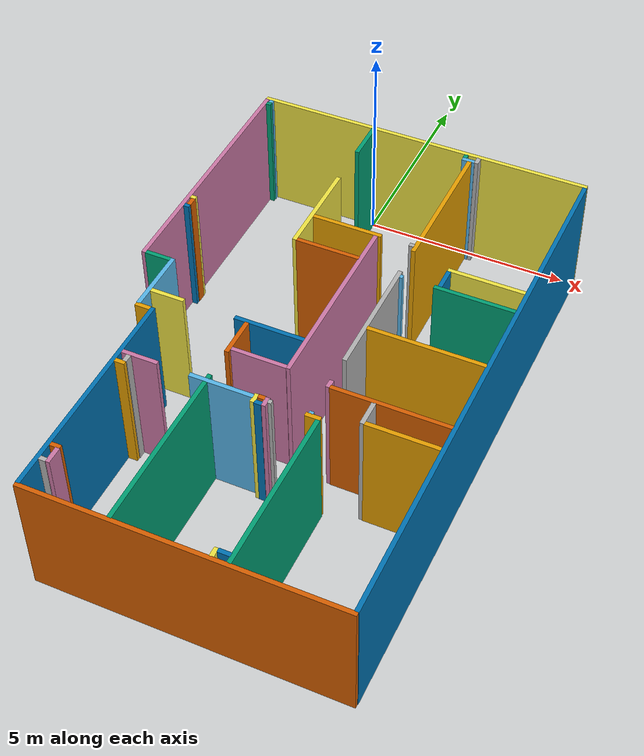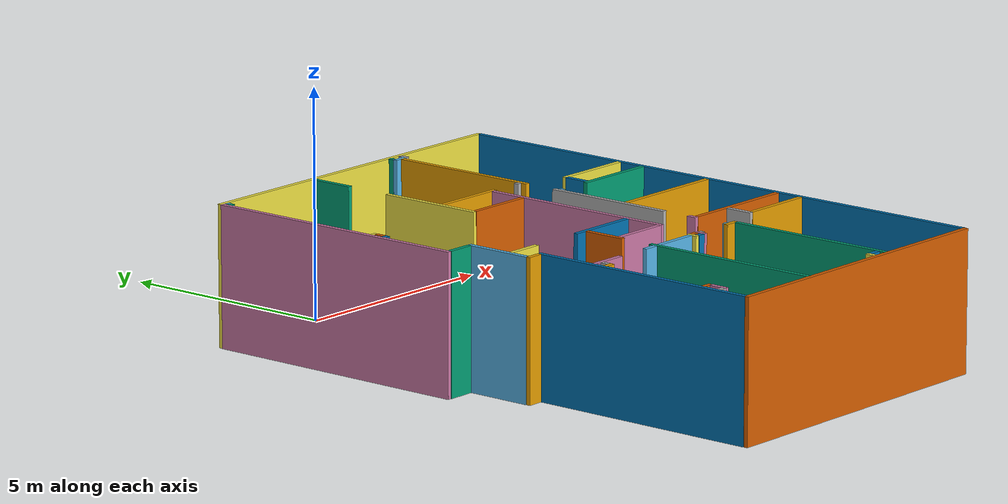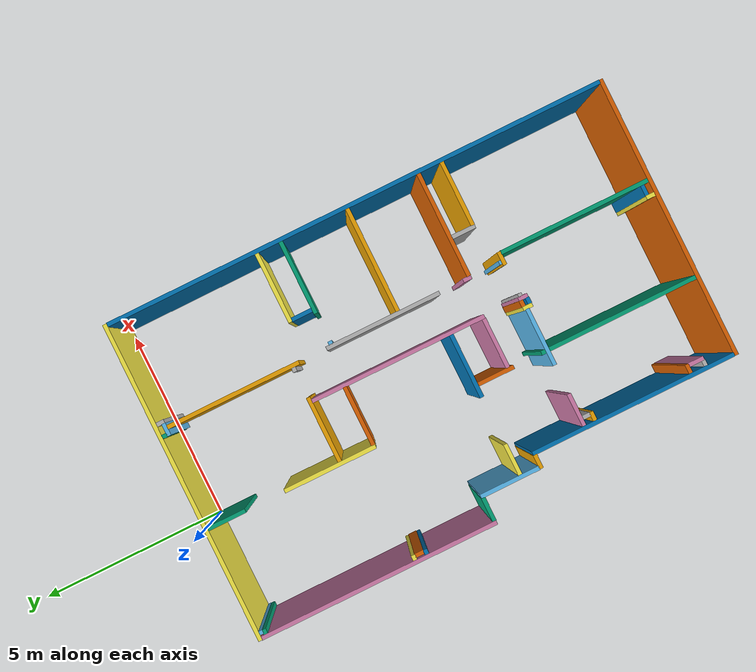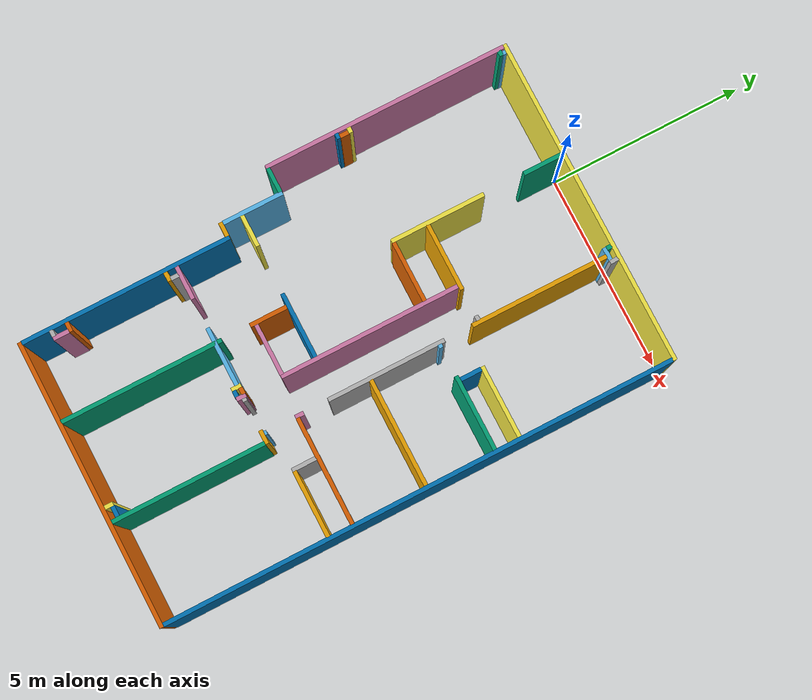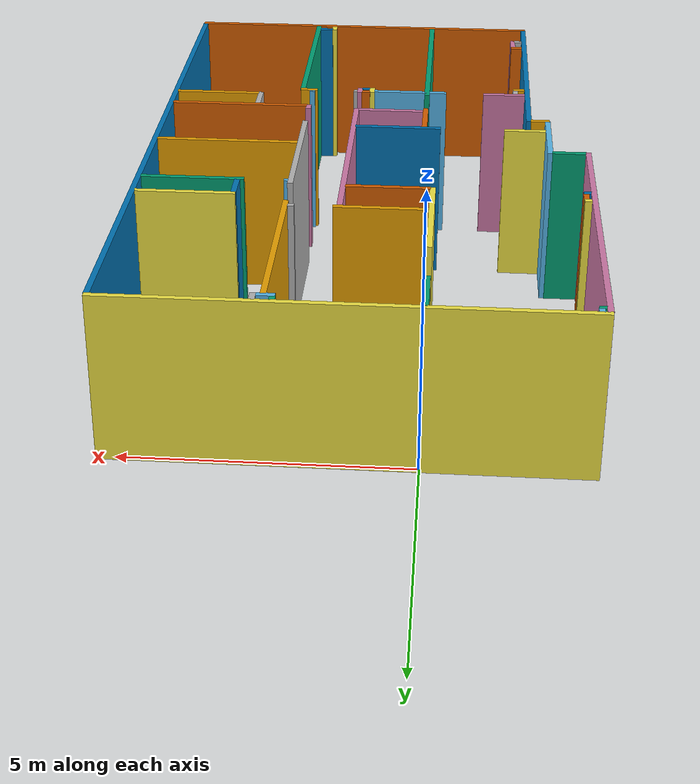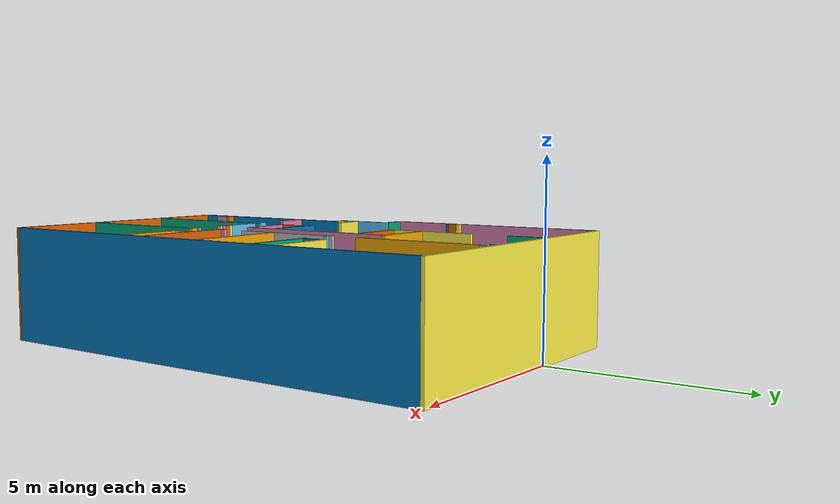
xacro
<?xml version="1.0"?>
<robot name="$(arg robot_name)" xmlns:xacro="http://www.ros.org/wiki/xacro">

  <!-- in the case of multiple floors, have each structure link to its own floor -->

  <link name="building_footprint_link" />

  <!-- floor 1 -->
  <joint name="floor1_joint" type="fixed">
    <parent link="building_footprint_link" />
    <origin xyz="0 0 0" rpy="0 0 0" />
    <child link="floor1_link" />
  </joint>
  <link name="floor1_link">
    <inertial>
      <mass value="10000" />
      <com xyz="0 0 0.0" />
      <inertia ixx="10" ixy="0"  ixz="0"
                        iyy="10" iyz="0"
                                 izz="10" />
    </inertial>
    <visual>
      <origin xyz="0 0 0" rpy="0 0 0" />
      <geometry name="floor1_visual_geom">
        <box size="0.001 0.001 0.001" />
      </geometry>
    </visual>
    <collision>
      <origin xyz="0 0 0" rpy="0 0 0" />
      <geometry name="floor1_collision_geom">
        <box size="0.001 0.001 0.001" />
      </geometry>
    </collision>
  </link>
  <gazebo reference="floor1_link">
    <material>PR2/Grey</material>
    <mu1>50.0</mu1>
    <mu2>50.0</mu2>
    <kp>1000000000.0</kp>
    <kd>1.0</kd>
  </gazebo>

  <!-- building links and joints - these connect into the floor1_link -->

  <link name="Wall_0">
    <inertial>
      <mass value="1"/>
      <origin rpy="0 0 0" xyz="0 0 1.524"/>
      <inertia ixx="0" ixy="0" ixz="0" iyy="0" iyz="0" izz="0"/>
    </inertial>
    <collision name="Wall_0_Collision">
      <origin rpy="0 0 0" xyz="0 0 1.524"/>
      <geometry>
        <box size="1.0    0.1015    3.048"/>
      </geometry>
    </collision>
    <visual name="Wall_0_Visual">
      <origin rpy="0 0 0" xyz="0 0 1.524"/>
      <geometry>
        <box size="1.0    0.1015    3.048"/>
      </geometry>
    </visual>
  </link>
  <joint type="fixed" name="Wall_0_hinge">
    <origin rpy="0 0 -1.5707963267949" xyz=" -0.0320847245965127  -0.5   0"/>
    <child link="Wall_0"/>
    <parent link="floor1_link"/>
    <axis xyz="0 0 0" rpy="0 0 0"/>
    <limit effort="10000" velocity="1000"/>
    <dynamics damping="1.0" friction="1.0"/>
  </joint>

  <link name="Wall_0a">
    <inertial>
      <mass value="1"/>
      <origin rpy="0 0 0" xyz="0 0 1.524"/>
      <inertia ixx="0" ixy="0" ixz="0" iyy="0" iyz="0" izz="0"/>
    </inertial>
    <collision name="Wall_0a_Collision">
      <origin rpy="0 0 0" xyz="0 0 1.524"/>
      <geometry>
        <box size="2.36828557853065 0.1015 3.048"/>
      </geometry>
    </collision>
    <visual name="Wall_0a_Visual">
      <origin rpy="0 0 0" xyz="0 0 1.524"/>
      <geometry>
        <box size="2.36828557853065 0.1015 3.048"/>
      </geometry>
    </visual>
  </link>
  <joint type="fixed" name="Wall_0a_hinge">
    <origin rpy="0 0 -1.5707963267949" xyz=" -0.0320847245965127 -3.20085721073468 0"/>
    <child link="Wall_0a"/>
    <parent link="floor1_link"/>
    <axis xyz="0 0 0" rpy="0 0 0"/>
    <limit effort="10000" velocity="1000"/>
    <dynamics damping="1.0" friction="1.0"/>
  </joint>

  <link name="Wall_1">
    <inertial>
      <mass value="1"/>
      <origin rpy="0 0 0" xyz="0 0 1.524"/>
      <inertia ixx="0" ixy="0" ixz="0" iyy="0" iyz="0" izz="0"/>
    </inertial>
    <collision name="Wall_1_Collision">
      <origin rpy="0 0 0" xyz="0 0 1.524"/>
      <geometry>
        <box size="5.23954304444799 0.1015 3.048"/>
      </geometry>
    </collision>
    <visual name="Wall_1_Visual">
      <origin rpy="0 0 0" xyz="0 0 1.524"/>
      <geometry>
        <box size="5.23954304444799 0.1015 3.048"/>
      </geometry>
    </visual>
  </link>
  <joint type="fixed" name="Wall_1_hinge">
    <origin rpy="0 0 1.5707963267949" xyz=" -1.80696721821406 -10.1969428992453 0"/>
    <child link="Wall_1"/>
    <parent link="floor1_link"/>
    <axis xyz="0 0 0" rpy="0 0 0"/>
    <limit effort="10000" velocity="1000"/>
    <dynamics damping="1.0" friction="1.0"/>
  </joint>
  <link name="Wall_2">
    <inertial>
      <mass value="1"/>
      <origin rpy="0 0 0" xyz="0 0 1.524"/>
      <inertia ixx="0" ixy="0" ixz="0" iyy="0" iyz="0" izz="0"/>
    </inertial>
    <collision name="Wall_2_Collision">
      <origin rpy="0 0 0" xyz="0 0 1.524"/>
      <geometry>
        <box size="1.51587077327675 0.1015 3.048"/>
      </geometry>
    </collision>
    <visual name="Wall_2_Visual">
      <origin rpy="0 0 0" xyz="0 0 1.524"/>
      <geometry>
        <box size="1.51587077327675 0.1015 3.048"/>
      </geometry>
    </visual>
  </link>
  <joint type="fixed" name="Wall_2_hinge">
    <origin rpy="0 0 0" xyz=" 0.765850662041855 -4.345 0"/>
    <child link="Wall_2"/>
    <parent link="floor1_link"/>
    <axis xyz="0 0 0" rpy="0 0 0"/>
    <limit effort="10000" velocity="1000"/>
    <dynamics damping="1.0" friction="1.0"/>
  </joint>
  <link name="Wall_3">
    <inertial>
      <mass value="1"/>
      <origin rpy="0 0 0" xyz="0 0 1.524"/>
      <inertia ixx="0" ixy="0" ixz="0" iyy="0" iyz="0" izz="0"/>
    </inertial>
    <collision name="Wall_3_Collision">
      <origin rpy="0 0 0" xyz="0 0 1.524"/>
      <geometry>
        <box size="4.48 0.1015 3.048"/>
      </geometry>
    </collision>
    <visual name="Wall_3_Visual">
      <origin rpy="0 0 0" xyz="0 0 1.524"/>
      <geometry>
        <box size="4.48 0.1015 3.048"/>
      </geometry>
    </visual>
  </link>
  <joint type="fixed" name="Wall_3_hinge">
    <origin rpy="0 0 -1.5707963267949" xyz=" 1.56378604868023 -5.75418078207523 0"/>
    <child link="Wall_3"/>
    <parent link="floor1_link"/>
    <axis xyz="0 0 0" rpy="0 0 0"/>
    <limit effort="10000" velocity="1000"/>
    <dynamics damping="1.0" friction="1.0"/>
  </joint>
  <link name="Wall_4">
    <inertial>
      <mass value="1"/>
      <origin rpy="0 0 0" xyz="0 0 1.524"/>
      <inertia ixx="0" ixy="0" ixz="0" iyy="0" iyz="0" izz="0"/>
    </inertial>
    <collision name="Wall_4_Collision">
      <origin rpy="0 0 0" xyz="0 0 1.524"/>
      <geometry>
        <box size="0.12 0.1015 3.048"/>
      </geometry>
    </collision>
    <visual name="Wall_4_Visual">
      <origin rpy="0 0 0" xyz="0 0 1.524"/>
      <geometry>
        <box size="0.12 0.1015 3.048"/>
      </geometry>
    </visual>
  </link>
  <joint type="fixed" name="Wall_4_hinge">
    <origin rpy="0 0 0" xyz=" 2.41106977281029 -3.47418078207523 0"/>
    <child link="Wall_4"/>
    <parent link="floor1_link"/>
    <axis xyz="0 0 0" rpy="0 0 0"/>
    <limit effort="10000" velocity="1000"/>
    <dynamics damping="1.0" friction="1.0"/>
  </joint>
  <link name="Wall_5">
    <inertial>
      <mass value="1"/>
      <origin rpy="0 0 0" xyz="0 0 1.524"/>
      <inertia ixx="0" ixy="0" ixz="0" iyy="0" iyz="0" izz="0"/>
    </inertial>
    <collision name="Wall_5_Collision">
      <origin rpy="0 0 0" xyz="0 0 1.524"/>
      <geometry>
        <box size="3.425 0.1015 3.048"/>
      </geometry>
    </collision>
    <visual name="Wall_5_Visual">
      <origin rpy="0 0 0" xyz="0 0 1.524"/>
      <geometry>
        <box size="3.425 0.1015 3.048"/>
      </geometry>
    </visual>
  </link>
  <joint type="fixed" name="Wall_5_hinge">
    <origin rpy="0 0 -1.5707963267949" xyz=" 2.51106977281029 -1.93921442146936 0"/>
    <child link="Wall_5"/>
    <parent link="floor1_link"/>
    <axis xyz="0 0 0" rpy="0 0 0"/>
    <limit effort="10000" velocity="1000"/>
    <dynamics damping="1.0" friction="1.0"/>
  </joint>
  <link name="Wall_6">
    <inertial>
      <mass value="1"/>
      <origin rpy="0 0 0" xyz="0 0 1.524"/>
      <inertia ixx="0" ixy="0" ixz="0" iyy="0" iyz="0" izz="0"/>
    </inertial>
    <collision name="Wall_6_Collision">
      <origin rpy="0 0 0" xyz="0 0 1.524"/>
      <geometry>
        <box size="0.314999999999999 0.1015 3.048"/>
      </geometry>
    </collision>
    <visual name="Wall_6_Visual">
      <origin rpy="0 0 0" xyz="0 0 1.524"/>
      <geometry>
        <box size="0.314999999999999 0.1015 3.048"/>
      </geometry>
    </visual>
  </link>
  <joint type="fixed" name="Wall_6_hinge">
    <origin rpy="0 0 3.14159265358979" xyz=" 2.47356977281029 -0.186714421469355 0"/>
    <child link="Wall_6"/>
    <parent link="floor1_link"/>
    <axis xyz="0 0 0" rpy="0 0 0"/>
    <limit effort="10000" velocity="1000"/>
    <dynamics damping="1.0" friction="1.0"/>
  </joint>
  <link name="Wall_7">
    <inertial>
      <mass value="1"/>
      <origin rpy="0 0 0" xyz="0 0 1.524"/>
      <inertia ixx="0" ixy="0" ixz="0" iyy="0" iyz="0" izz="0"/>
    </inertial>
    <collision name="Wall_7_Collision">
      <origin rpy="0 0 0" xyz="0 0 1.524"/>
      <geometry>
        <box size="0.13 0.1015 3.048"/>
      </geometry>
    </collision>
    <visual name="Wall_7_Visual">
      <origin rpy="0 0 0" xyz="0 0 1.524"/>
      <geometry>
        <box size="0.13 0.1015 3.048"/>
      </geometry>
    </visual>
  </link>
  <joint type="fixed" name="Wall_7_hinge">
    <origin rpy="0 0 1.5707963267949" xyz=" 2.35606977281029 -0.081714421469355 0"/>
    <child link="Wall_7"/>
    <parent link="floor1_link"/>
    <axis xyz="0 0 0" rpy="0 0 0"/>
    <limit effort="10000" velocity="1000"/>
    <dynamics damping="1.0" friction="1.0"/>
  </joint>
  <link name="Wall_8">
    <inertial>
      <mass value="1"/>
      <origin rpy="0 0 0" xyz="0 0 1.524"/>
      <inertia ixx="0" ixy="0" ixz="0" iyy="0" iyz="0" izz="0"/>
    </inertial>
    <collision name="Wall_8_Collision">
      <origin rpy="0 0 0" xyz="0 0 1.524"/>
      <geometry>
        <box size="8.215 0.1015 3.048"/>
      </geometry>
    </collision>
    <visual name="Wall_8_Visual">
      <origin rpy="0 0 0" xyz="0 0 1.524"/>
      <geometry>
        <box size="8.215 0.1015 3.048"/>
      </geometry>
    </visual>
  </link>
  <joint type="fixed" name="Wall_8_hinge">
    <origin rpy="0 0 0" xyz=" 1.20041527540349 0.0232855785306519 0"/>
    <child link="Wall_8"/>
    <parent link="floor1_link"/>
    <axis xyz="0 0 0" rpy="0 0 0"/>
    <limit effort="10000" velocity="1000"/>
    <dynamics damping="1.0" friction="1.0"/>
  </joint>
  <link name="Wall_9">
    <inertial>
      <mass value="1"/>
      <origin rpy="0 0 0" xyz="0 0 1.524"/>
      <inertia ixx="0" ixy="0" ixz="0" iyy="0" iyz="0" izz="0"/>
    </inertial>
    <collision name="Wall_9_Collision">
      <origin rpy="0 0 0" xyz="0 0 1.524"/>
      <geometry>
        <box size="12.8 0.1015 3.048"/>
      </geometry>
    </collision>
    <visual name="Wall_9_Visual">
      <origin rpy="0 0 0" xyz="0 0 1.524"/>
      <geometry>
        <box size="12.8 0.1015 3.048"/>
      </geometry>
    </visual>
  </link>
  <joint type="fixed" name="Wall_9_hinge">
    <origin rpy="0 0 -1.5707963267949" xyz=" 5.26791527540349 -6.41671442146936 0"/>
    <child link="Wall_9"/>
    <parent link="floor1_link"/>
    <axis xyz="0 0 0" rpy="0 0 0"/>
    <limit effort="10000" velocity="1000"/>
    <dynamics damping="1.0" friction="1.0"/>
  </joint>
  <link name="Wall_10">
    <inertial>
      <mass value="1"/>
      <origin rpy="0 0 0" xyz="0 0 1.524"/>
      <inertia ixx="0" ixy="0" ixz="0" iyy="0" iyz="0" izz="0"/>
    </inertial>
    <collision name="Wall_10_Collision">
      <origin rpy="0 0 0" xyz="0 0 1.524"/>
      <geometry>
        <box size="7.155 0.1015 3.048"/>
      </geometry>
    </collision>
    <visual name="Wall_10_Visual">
      <origin rpy="0 0 0" xyz="0 0 1.524"/>
      <geometry>
        <box size="7.155 0.1015 3.048"/>
      </geometry>
    </visual>
  </link>
  <joint type="fixed" name="Wall_10_hinge">
    <origin rpy="0 0 3.14159265358979" xyz=" 1.73041527540347 -12.8567144214694 0"/>
    <child link="Wall_10"/>
    <parent link="floor1_link"/>
    <axis xyz="0 0 0" rpy="0 0 0"/>
    <limit effort="10000" velocity="1000"/>
    <dynamics damping="1.0" friction="1.0"/>
  </joint>
  <link name="Wall_11">
    <inertial>
      <mass value="1"/>
      <origin rpy="0 0 0" xyz="0 0 1.524"/>
      <inertia ixx="0" ixy="0" ixz="0" iyy="0" iyz="0" izz="0"/>
    </inertial>
    <collision name="Wall_11_Collision">
      <origin rpy="0 0 0" xyz="0 0 1.524"/>
      <geometry>
        <box size="6.115456955552 0.1015 3.048"/>
      </geometry>
    </collision>
    <visual name="Wall_11_Visual">
      <origin rpy="0 0 0" xyz="0 0 1.524"/>
      <geometry>
        <box size="6.115456955552 0.1015 3.048"/>
      </geometry>
    </visual>
  </link>
  <joint type="fixed" name="Wall_11_hinge">
    <origin rpy="0 0 -1.5707963267949" xyz=" -2.86708472459651 -3.07444289924535 0"/>
    <child link="Wall_11"/>
    <parent link="floor1_link"/>
    <axis xyz="0 0 0" rpy="0 0 0"/>
    <limit effort="10000" velocity="1000"/>
    <dynamics damping="1.0" friction="1.0"/>
  </joint>
  <link name="Wall_12">
    <inertial>
      <mass value="1"/>
      <origin rpy="0 0 0" xyz="0 0 1.524"/>
      <inertia ixx="0" ixy="0" ixz="0" iyy="0" iyz="0" izz="0"/>
    </inertial>
    <collision name="Wall_12_Collision">
      <origin rpy="0 0 0" xyz="0 0 1.524"/>
      <geometry>
        <box size="0.21 0.1015 3.048"/>
      </geometry>
    </collision>
    <visual name="Wall_12_Visual">
      <origin rpy="0 0 0" xyz="0 0 1.524"/>
      <geometry>
        <box size="0.21 0.1015 3.048"/>
      </geometry>
    </visual>
  </link>
  <joint type="fixed" name="Wall_12_hinge">
    <origin rpy="0 0 -1.5707963267949" xyz=" 2.67106977281029 -0.121714421469355 0"/>
    <child link="Wall_12"/>
    <parent link="floor1_link"/>
    <axis xyz="0 0 0" rpy="0 0 0"/>
    <limit effort="10000" velocity="1000"/>
    <dynamics damping="1.0" friction="1.0"/>
  </joint>
  <link name="Wall_13">
    <inertial>
      <mass value="1"/>
      <origin rpy="0 0 0" xyz="0 0 1.524"/>
      <inertia ixx="0" ixy="0" ixz="0" iyy="0" iyz="0" izz="0"/>
    </inertial>
    <collision name="Wall_13_Collision">
      <origin rpy="0 0 0" xyz="0 0 1.524"/>
      <geometry>
        <box size="0.36 0.1015 3.048"/>
      </geometry>
    </collision>
    <visual name="Wall_13_Visual">
      <origin rpy="0 0 0" xyz="0 0 1.524"/>
      <geometry>
        <box size="0.36 0.1015 3.048"/>
      </geometry>
    </visual>
  </link>
  <joint type="fixed" name="Wall_13_hinge">
    <origin rpy="0 0 3.14159265358979" xyz=" -2.02696721821405 -7.61717137702135 0"/>
    <child link="Wall_13"/>
    <parent link="floor1_link"/>
    <axis xyz="0 0 0" rpy="0 0 0"/>
    <limit effort="10000" velocity="1000"/>
    <dynamics damping="1.0" friction="1.0"/>
  </joint>
  <link name="Wall_14">
    <inertial>
      <mass value="1"/>
      <origin rpy="0 0 0" xyz="0 0 1.524"/>
      <inertia ixx="0" ixy="0" ixz="0" iyy="0" iyz="0" izz="0"/>
    </inertial>
    <collision name="Wall_14_Collision">
      <origin rpy="0 0 0" xyz="0 0 1.524"/>
      <geometry>
        <box size="1.525 0.1015 3.048"/>
      </geometry>
    </collision>
    <visual name="Wall_14_Visual">
      <origin rpy="0 0 0" xyz="0 0 1.524"/>
      <geometry>
        <box size="1.525 0.1015 3.048"/>
      </geometry>
    </visual>
  </link>
  <joint type="fixed" name="Wall_14_hinge">
    <origin rpy="0 0 1.5707963267949" xyz=" -2.16696721821405 -6.81467137702135 0"/>
    <child link="Wall_14"/>
    <parent link="floor1_link"/>
    <axis xyz="0 0 0" rpy="0 0 0"/>
    <limit effort="10000" velocity="1000"/>
    <dynamics damping="1.0" friction="1.0"/>
  </joint>
  <link name="Wall_15">
    <inertial>
      <mass value="1"/>
      <origin rpy="0 0 0" xyz="0 0 1.524"/>
      <inertia ixx="0" ixy="0" ixz="0" iyy="0" iyz="0" izz="0"/>
    </inertial>
    <collision name="Wall_15_Collision">
      <origin rpy="0 0 0" xyz="0 0 1.524"/>
      <geometry>
        <box size="0.620117506382473 0.1015 3.048"/>
      </geometry>
    </collision>
    <visual name="Wall_15_Visual">
      <origin rpy="0 0 0" xyz="0 0 1.524"/>
      <geometry>
        <box size="0.620117506382473 0.1015 3.048"/>
      </geometry>
    </visual>
  </link>
  <joint type="fixed" name="Wall_15_hinge">
    <origin rpy="0 0 3.14159265358979" xyz=" -2.51702597140529 -6.09217137702135 0"/>
    <child link="Wall_15"/>
    <parent link="floor1_link"/>
    <axis xyz="0 0 0" rpy="0 0 0"/>
    <limit effort="10000" velocity="1000"/>
    <dynamics damping="1.0" friction="1.0"/>
  </joint>
  <link name="Wall_16">
    <inertial>
      <mass value="1"/>
      <origin rpy="0 0 0" xyz="0 0 1.524"/>
      <inertia ixx="0" ixy="0" ixz="0" iyy="0" iyz="0" izz="0"/>
    </inertial>
    <collision name="Wall_16_Collision">
      <origin rpy="0 0 0" xyz="0 0 1.524"/>
      <geometry>
        <box size="0.8 0.1015 3.048"/>
      </geometry>
    </collision>
    <visual name="Wall_16_Visual">
      <origin rpy="0 0 0" xyz="0 0 1.524"/>
      <geometry>
        <box size="0.8 0.1015 3.048"/>
      </geometry>
    </visual>
  </link>
  <joint type="fixed" name="Wall_16_hinge">
    <origin rpy="0 0 0" xyz=" -1.72696721821405 -7.10717137702135 0"/>
    <child link="Wall_16"/>
    <parent link="floor1_link"/>
    <axis xyz="0 0 0" rpy="0 0 0"/>
    <limit effort="10000" velocity="1000"/>
    <dynamics damping="1.0" friction="1.0"/>
  </joint>
  <link name="Wall_17">
    <inertial>
      <mass value="1"/>
      <origin rpy="0 0 0" xyz="0 0 1.524"/>
      <inertia ixx="0" ixy="0" ixz="0" iyy="0" iyz="0" izz="0"/>
    </inertial>
    <collision name="Wall_17_Collision">
      <origin rpy="0 0 0" xyz="0 0 1.524"/>
      <geometry>
        <box size="1.63139505276616 0.1015 3.048"/>
      </geometry>
    </collision>
    <visual name="Wall_17_Visual">
      <origin rpy="0 0 0" xyz="0 0 1.524"/>
      <geometry>
        <box size="1.63139505276616 0.1015 3.048"/>
      </geometry>
    </visual>
  </link>
  <joint type="fixed" name="Wall_17_hinge">
    <origin rpy="0 0 0" xyz=" 0.708088522297137 -7.1081449175682 0"/>
    <child link="Wall_17"/>
    <parent link="floor1_link"/>
    <axis xyz="0 0 0" rpy="0 0 0"/>
    <limit effort="10000" velocity="1000"/>
    <dynamics damping="1.0" friction="1.0"/>
  </joint>
  <link name="Wall_18">
    <inertial>
      <mass value="1"/>
      <origin rpy="0 0 0" xyz="0 0 1.524"/>
      <inertia ixx="0" ixy="0" ixz="0" iyy="0" iyz="0" izz="0"/>
    </inertial>
    <collision name="Wall_18_Collision">
      <origin rpy="0 0 0" xyz="0 0 1.524"/>
      <geometry>
        <box size="0.94 0.1015 3.048"/>
      </geometry>
    </collision>
    <visual name="Wall_18_Visual">
      <origin rpy="0 0 0" xyz="0 0 1.524"/>
      <geometry>
        <box size="0.94 0.1015 3.048"/>
      </geometry>
    </visual>
  </link>
  <joint type="fixed" name="Wall_18_hinge">
    <origin rpy="0 0 -1.5707963267949" xyz=" 0.203786048680223 -7.61814491756821 0"/>
    <child link="Wall_18"/>
    <parent link="floor1_link"/>
    <axis xyz="0 0 0" rpy="0 0 0"/>
    <limit effort="10000" velocity="1000"/>
    <dynamics damping="1.0" friction="1.0"/>
  </joint>
  <link name="Wall_19">
    <inertial>
      <mass value="1"/>
      <origin rpy="0 0 0" xyz="0 0 1.524"/>
      <inertia ixx="0" ixy="0" ixz="0" iyy="0" iyz="0" izz="0"/>
    </inertial>
    <collision name="Wall_19_Collision">
      <origin rpy="0 0 0" xyz="0 0 1.524"/>
      <geometry>
        <box size="1.28 0.1015 3.048"/>
      </geometry>
    </collision>
    <visual name="Wall_19_Visual">
      <origin rpy="0 0 0" xyz="0 0 1.524"/>
      <geometry>
        <box size="1.28 0.1015 3.048"/>
      </geometry>
    </visual>
  </link>
  <joint type="fixed" name="Wall_19_hinge">
    <origin rpy="0 0 3.14159265358979" xyz=" 0.88378604868022 -7.95418078207523 0"/>
    <child link="Wall_19"/>
    <parent link="floor1_link"/>
    <axis xyz="0 0 0" rpy="0 0 0"/>
    <limit effort="10000" velocity="1000"/>
    <dynamics damping="1.0" friction="1.0"/>
  </joint>
  <link name="Wall_20">
    <inertial>
      <mass value="1"/>
      <origin rpy="0 0 0" xyz="0 0 1.524"/>
      <inertia ixx="0" ixy="0" ixz="0" iyy="0" iyz="0" izz="0"/>
    </inertial>
    <collision name="Wall_20_Collision">
      <origin rpy="0 0 0" xyz="0 0 1.524"/>
      <geometry>
        <box size="2.94 0.1015 3.048"/>
      </geometry>
    </collision>
    <visual name="Wall_20_Visual">
      <origin rpy="0 0 0" xyz="0 0 1.524"/>
      <geometry>
        <box size="2.94 0.1015 3.048"/>
      </geometry>
    </visual>
  </link>
  <joint type="fixed" name="Wall_20_hinge">
    <origin rpy="0 0 -1.5707963267949" xyz=" 2.51257647248415 -5.82868667687965 0"/>
    <child link="Wall_20"/>
    <parent link="floor1_link"/>
    <axis xyz="0 0 0" rpy="0 0 0"/>
    <limit effort="10000" velocity="1000"/>
    <dynamics damping="1.0" friction="1.0"/>
  </joint>
  <link name="Wall_21">
    <inertial>
      <mass value="1"/>
      <origin rpy="0 0 0" xyz="0 0 1.524"/>
      <inertia ixx="0" ixy="0" ixz="0" iyy="0" iyz="0" izz="0"/>
    </inertial>
    <collision name="Wall_21_Collision">
      <origin rpy="0 0 0" xyz="0 0 1.524"/>
      <geometry>
        <box size="2.67533880291933 0.1015 3.048"/>
      </geometry>
    </collision>
    <visual name="Wall_21_Visual">
      <origin rpy="0 0 0" xyz="0 0 1.524"/>
      <geometry>
        <box size="2.67533880291933 0.1015 3.048"/>
      </geometry>
    </visual>
  </link>
  <joint type="fixed" name="Wall_21_hinge">
    <origin rpy="0 0 3.14159265358979" xyz=" 3.89024587394381 -6.23868667687965 0"/>
    <child link="Wall_21"/>
    <parent link="floor1_link"/>
    <axis xyz="0 0 0" rpy="0 0 0"/>
    <limit effort="10000" velocity="1000"/>
    <dynamics damping="1.0" friction="1.0"/>
  </joint>
  <link name="Wall_22">
    <inertial>
      <mass value="1"/>
      <origin rpy="0 0 0" xyz="0 0 1.524"/>
      <inertia ixx="0" ixy="0" ixz="0" iyy="0" iyz="0" izz="0"/>
    </inertial>
    <collision name="Wall_22_Collision">
      <origin rpy="0 0 0" xyz="0 0 1.524"/>
      <geometry>
        <box size="0.0850000000000007 0.1015 3.048"/>
      </geometry>
    </collision>
    <visual name="Wall_22_Visual">
      <origin rpy="0 0 0" xyz="0 0 1.524"/>
      <geometry>
        <box size="0.0850000000000007 0.1015 3.048"/>
      </geometry>
    </visual>
  </link>
  <joint type="fixed" name="Wall_22_hinge">
    <origin rpy="0 0 0" xyz=" 2.59507647248415 -4.50368667687965 0"/>
    <child link="Wall_22"/>
    <parent link="floor1_link"/>
    <axis xyz="0 0 0" rpy="0 0 0"/>
    <limit effort="10000" velocity="1000"/>
    <dynamics damping="1.0" friction="1.0"/>
  </joint>
  <link name="Wall_23">
    <inertial>
      <mass value="1"/>
      <origin rpy="0 0 0" xyz="0 0 1.524"/>
      <inertia ixx="0" ixy="0" ixz="0" iyy="0" iyz="0" izz="0"/>
    </inertial>
    <collision name="Wall_23_Collision">
      <origin rpy="0 0 0" xyz="0 0 1.524"/>
      <geometry>
        <box size="1.87367439625208 0.1015 3.048"/>
      </geometry>
    </collision>
    <visual name="Wall_23_Visual">
      <origin rpy="0 0 0" xyz="0 0 1.524"/>
      <geometry>
        <box size="1.87367439625208 0.1015 3.048"/>
      </geometry>
    </visual>
  </link>
  <joint type="fixed" name="Wall_23_hinge">
    <origin rpy="0 0 0" xyz=" 4.29107807727743 -4.50455145365601 0"/>
    <child link="Wall_23"/>
    <parent link="floor1_link"/>
    <axis xyz="0 0 0" rpy="0 0 0"/>
    <limit effort="10000" velocity="1000"/>
    <dynamics damping="1.0" friction="1.0"/>
  </joint>
  <link name="Wall_24">
    <inertial>
      <mass value="1"/>
      <origin rpy="0 0 0" xyz="0 0 1.524"/>
      <inertia ixx="0" ixy="0" ixz="0" iyy="0" iyz="0" izz="0"/>
    </inertial>
    <collision name="Wall_24_Collision">
      <origin rpy="0 0 0" xyz="0 0 1.524"/>
      <geometry>
        <box size="1.79533880291933 0.1015 3.048"/>
      </geometry>
    </collision>
    <visual name="Wall_24_Visual">
      <origin rpy="0 0 0" xyz="0 0 1.524"/>
      <geometry>
        <box size="1.79533880291933 0.1015 3.048"/>
      </geometry>
    </visual>
  </link>
  <joint type="fixed" name="Wall_24_hinge">
    <origin rpy="0 0 3.14159265358979" xyz=" 4.33024587394381 -3.88500000000001 0"/>
    <child link="Wall_24"/>
    <parent link="floor1_link"/>
    <axis xyz="0 0 0" rpy="0 0 0"/>
    <limit effort="10000" velocity="1000"/>
    <dynamics damping="1.0" friction="1.0"/>
  </joint>
  <link name="Wall_25">
    <inertial>
      <mass value="1"/>
      <origin rpy="0 0 0" xyz="0 0 1.524"/>
      <inertia ixx="0" ixy="0" ixz="0" iyy="0" iyz="0" izz="0"/>
    </inertial>
    <collision name="Wall_25_Collision">
      <origin rpy="0 0 0" xyz="0 0 1.524"/>
      <geometry>
        <box size="0.539551453656003 0.1015 3.048"/>
      </geometry>
    </collision>
    <visual name="Wall_25_Visual">
      <origin rpy="0 0 0" xyz="0 0 1.524"/>
      <geometry>
        <box size="0.539551453656003 0.1015 3.048"/>
      </geometry>
    </visual>
  </link>
  <joint type="fixed" name="Wall_25_hinge">
    <origin rpy="0 0 -1.5707963267949" xyz=" 3.47257647248415 -4.19477572682801 0"/>
    <child link="Wall_25"/>
    <parent link="floor1_link"/>
    <axis xyz="0 0 0" rpy="0 0 0"/>
    <limit effort="10000" velocity="1000"/>
    <dynamics damping="1.0" friction="1.0"/>
  </joint>
  <link name="Wall_26">
    <inertial>
      <mass value="1"/>
      <origin rpy="0 0 0" xyz="0 0 1.524"/>
      <inertia ixx="0" ixy="0" ixz="0" iyy="0" iyz="0" izz="0"/>
    </inertial>
    <collision name="Wall_26_Collision">
      <origin rpy="0 0 0" xyz="0 0 1.524"/>
      <geometry>
        <box size="2.66978450374121 0.1015 3.048"/>
      </geometry>
    </collision>
    <visual name="Wall_26_Visual">
      <origin rpy="0 0 0" xyz="0 0 1.524"/>
      <geometry>
        <box size="2.66978450374121 0.1015 3.048"/>
      </geometry>
    </visual>
  </link>
  <joint type="fixed" name="Wall_26_hinge">
    <origin rpy="0 0 0" xyz=" 3.89302302353287 -8.08548070884217 0"/>
    <child link="Wall_26"/>
    <parent link="floor1_link"/>
    <axis xyz="0 0 0" rpy="0 0 0"/>
    <limit effort="10000" velocity="1000"/>
    <dynamics damping="1.0" friction="1.0"/>
  </joint>
  <link name="Wall_27">
    <inertial>
      <mass value="1"/>
      <origin rpy="0 0 0" xyz="0 0 1.524"/>
      <inertia ixx="0" ixy="0" ixz="0" iyy="0" iyz="0" izz="0"/>
    </inertial>
    <collision name="Wall_27_Collision">
      <origin rpy="0 0 0" xyz="0 0 1.524"/>
      <geometry>
        <box size="0.209071802671512 0.1015 3.048"/>
      </geometry>
    </collision>
    <visual name="Wall_27_Visual">
      <origin rpy="0 0 0" xyz="0 0 1.524"/>
      <geometry>
        <box size="0.209071802671512 0.1015 3.048"/>
      </geometry>
    </visual>
  </link>
  <joint type="fixed" name="Wall_27_hinge">
    <origin rpy="0 0 -1.5707963267949" xyz=" 2.51813077166227 -8.02094480750642 0"/>
    <child link="Wall_27"/>
    <parent link="floor1_link"/>
    <axis xyz="0 0 0" rpy="0 0 0"/>
    <limit effort="10000" velocity="1000"/>
    <dynamics damping="1.0" friction="1.0"/>
  </joint>
  <link name="Wall_28">
    <inertial>
      <mass value="1"/>
      <origin rpy="0 0 0" xyz="0 0 1.524"/>
      <inertia ixx="0" ixy="0" ixz="0" iyy="0" iyz="0" izz="0"/>
    </inertial>
    <collision name="Wall_28_Collision">
      <origin rpy="0 0 0" xyz="0 0 1.524"/>
      <geometry>
        <box size="0.605000000000001 0.1015 3.048"/>
      </geometry>
    </collision>
    <visual name="Wall_28_Visual">
      <origin rpy="0 0 0" xyz="0 0 1.524"/>
      <geometry>
        <box size="0.605000000000001 0.1015 3.048"/>
      </geometry>
    </visual>
  </link>
  <joint type="fixed" name="Wall_28_hinge">
    <origin rpy="0 0 -1.5707963267949" xyz=" 3.54313077166227 -8.42798070884218 0"/>
    <child link="Wall_28"/>
    <parent link="floor1_link"/>
    <axis xyz="0 0 0" rpy="0 0 0"/>
    <limit effort="10000" velocity="1000"/>
    <dynamics damping="1.0" friction="1.0"/>
  </joint>
  <link name="Wall_29">
    <inertial>
      <mass value="1"/>
      <origin rpy="0 0 0" xyz="0 0 1.524"/>
      <inertia ixx="0" ixy="0" ixz="0" iyy="0" iyz="0" izz="0"/>
    </inertial>
    <collision name="Wall_29_Collision">
      <origin rpy="0 0 0" xyz="0 0 1.524"/>
      <geometry>
        <box size="1.64478450374121 0.1015 3.048"/>
      </geometry>
    </collision>
    <visual name="Wall_29_Visual">
      <origin rpy="0 0 0" xyz="0 0 1.524"/>
      <geometry>
        <box size="1.64478450374121 0.1015 3.048"/>
      </geometry>
    </visual>
  </link>
  <joint type="fixed" name="Wall_29_hinge">
    <origin rpy="0 0 0" xyz=" 4.40552302353287 -8.69048070884218 0"/>
    <child link="Wall_29"/>
    <parent link="floor1_link"/>
    <axis xyz="0 0 0" rpy="0 0 0"/>
    <limit effort="10000" velocity="1000"/>
    <dynamics damping="1.0" friction="1.0"/>
  </joint>
  <link name="Wall_30">
    <inertial>
      <mass value="1"/>
      <origin rpy="0 0 0" xyz="0 0 1.524"/>
      <inertia ixx="0" ixy="0" ixz="0" iyy="0" iyz="0" izz="0"/>
    </inertial>
    <collision name="Wall_30_Collision">
      <origin rpy="0 0 0" xyz="0 0 1.524"/>
      <geometry>
        <box size="0.1 0.1015 3.048"/>
      </geometry>
    </collision>
    <visual name="Wall_30_Visual">
      <origin rpy="0 0 0" xyz="0 0 1.524"/>
      <geometry>
        <box size="0.1 0.1015 3.048"/>
      </geometry>
    </visual>
  </link>
  <joint type="fixed" name="Wall_30_hinge">
    <origin rpy="0 0 -1.5707963267949" xyz=" -2.73708472459651 -0.0667144214693482 0"/>
    <child link="Wall_30"/>
    <parent link="floor1_link"/>
    <axis xyz="0 0 0" rpy="0 0 0"/>
    <limit effort="10000" velocity="1000"/>
    <dynamics damping="1.0" friction="1.0"/>
  </joint>
  <link name="Wall_31">
    <inertial>
      <mass value="1"/>
      <origin rpy="0 0 0" xyz="0 0 1.524"/>
      <inertia ixx="0" ixy="0" ixz="0" iyy="0" iyz="0" izz="0"/>
    </inertial>
    <collision name="Wall_31_Collision">
      <origin rpy="0 0 0" xyz="0 0 1.524"/>
      <geometry>
        <box size="0.13 0.1015 3.048"/>
      </geometry>
    </collision>
    <visual name="Wall_31_Visual">
      <origin rpy="0 0 0" xyz="0 0 1.524"/>
      <geometry>
        <box size="0.13 0.1015 3.048"/>
      </geometry>
    </visual>
  </link>
  <joint type="fixed" name="Wall_31_hinge">
    <origin rpy="0 0 3.14159265358979" xyz=" -2.76208472459651 -0.156714421469348 0"/>
    <child link="Wall_31"/>
    <parent link="floor1_link"/>
    <axis xyz="0 0 0" rpy="0 0 0"/>
    <limit effort="10000" velocity="1000"/>
    <dynamics damping="1.0" friction="1.0"/>
  </joint>
  <link name="Wall_32">
    <inertial>
      <mass value="1"/>
      <origin rpy="0 0 0" xyz="0 0 1.524"/>
      <inertia ixx="0" ixy="0" ixz="0" iyy="0" iyz="0" izz="0"/>
    </inertial>
    <collision name="Wall_32_Collision">
      <origin rpy="0 0 0" xyz="0 0 1.524"/>
      <geometry>
        <box size="0.140000000000002 0.1015 3.048"/>
      </geometry>
    </collision>
    <visual name="Wall_32_Visual">
      <origin rpy="0 0 0" xyz="0 0 1.524"/>
      <geometry>
        <box size="0.140000000000002 0.1015 3.048"/>
      </geometry>
    </visual>
  </link>
  <joint type="fixed" name="Wall_32_hinge">
    <origin rpy="0 0 0" xyz=" -2.75708472459652 -4.035 0"/>
    <child link="Wall_32"/>
    <parent link="floor1_link"/>
    <axis xyz="0 0 0" rpy="0 0 0"/>
    <limit effort="10000" velocity="1000"/>
    <dynamics damping="1.0" friction="1.0"/>
  </joint>
  <link name="Wall_33">
    <inertial>
      <mass value="1"/>
      <origin rpy="0 0 0" xyz="0 0 1.524"/>
      <inertia ixx="0" ixy="0" ixz="0" iyy="0" iyz="0" izz="0"/>
    </inertial>
    <collision name="Wall_33_Collision">
      <origin rpy="0 0 0" xyz="0 0 1.524"/>
      <geometry>
        <box size="0.140000000000002 0.1015 3.048"/>
      </geometry>
    </collision>
    <visual name="Wall_33_Visual">
      <origin rpy="0 0 0" xyz="0 0 1.524"/>
      <geometry>
        <box size="0.140000000000002 0.1015 3.048"/>
      </geometry>
    </visual>
  </link>
  <joint type="fixed" name="Wall_33_hinge">
    <origin rpy="0 0 0" xyz=" -2.75708472459652 -4.34499999999999 0"/>
    <child link="Wall_33"/>
    <parent link="floor1_link"/>
    <axis xyz="0 0 0" rpy="0 0 0"/>
    <limit effort="10000" velocity="1000"/>
    <dynamics damping="1.0" friction="1.0"/>
  </joint>
  <link name="Wall_34">
    <inertial>
      <mass value="1"/>
      <origin rpy="0 0 0" xyz="0 0 1.524"/>
      <inertia ixx="0" ixy="0" ixz="0" iyy="0" iyz="0" izz="0"/>
    </inertial>
    <collision name="Wall_34_Collision">
      <origin rpy="0 0 0" xyz="0 0 1.524"/>
      <geometry>
        <box size="0.229999999999996 0.1015 3.048"/>
      </geometry>
    </collision>
    <visual name="Wall_34_Visual">
      <origin rpy="0 0 0" xyz="0 0 1.524"/>
      <geometry>
        <box size="0.229999999999996 0.1015 3.048"/>
      </geometry>
    </visual>
  </link>
  <joint type="fixed" name="Wall_34_hinge">
    <origin rpy="0 0 1.5707963267949" xyz=" -2.72708472459652 -4.18999999999999 0"/>
    <child link="Wall_34"/>
    <parent link="floor1_link"/>
    <axis xyz="0 0 0" rpy="0 0 0"/>
    <limit effort="10000" velocity="1000"/>
    <dynamics damping="1.0" friction="1.0"/>
  </joint>
  <link name="Wall_35">
    <inertial>
      <mass value="1"/>
      <origin rpy="0 0 0" xyz="0 0 1.524"/>
      <inertia ixx="0" ixy="0" ixz="0" iyy="0" iyz="0" izz="0"/>
    </inertial>
    <collision name="Wall_35_Collision">
      <origin rpy="0 0 0" xyz="0 0 1.524"/>
      <geometry>
        <box size="0.84 0.1015 3.048"/>
      </geometry>
    </collision>
    <visual name="Wall_35_Visual">
      <origin rpy="0 0 0" xyz="0 0 1.524"/>
      <geometry>
        <box size="0.84 0.1015 3.048"/>
      </geometry>
    </visual>
  </link>
  <joint type="fixed" name="Wall_35_hinge">
    <origin rpy="0 0 0" xyz=" -1.34696721821406 -8.95048070884217 0"/>
    <child link="Wall_35"/>
    <parent link="floor1_link"/>
    <axis xyz="0 0 0" rpy="0 0 0"/>
    <limit effort="10000" velocity="1000"/>
    <dynamics damping="1.0" friction="1.0"/>
  </joint>
  <link name="Wall_36">
    <inertial>
      <mass value="1"/>
      <origin rpy="0 0 0" xyz="0 0 1.524"/>
      <inertia ixx="0" ixy="0" ixz="0" iyy="0" iyz="0" izz="0"/>
    </inertial>
    <collision name="Wall_36_Collision">
      <origin rpy="0 0 0" xyz="0 0 1.524"/>
      <geometry>
        <box size="0.2 0.1015 3.048"/>
      </geometry>
    </collision>
    <visual name="Wall_36_Visual">
      <origin rpy="0 0 0" xyz="0 0 1.524"/>
      <geometry>
        <box size="0.2 0.1015 3.048"/>
      </geometry>
    </visual>
  </link>
  <joint type="fixed" name="Wall_36_hinge">
    <origin rpy="0 0 -1.5707963267949" xyz=" -1.57196721821405 -9.09048070884217 0"/>
    <child link="Wall_36"/>
    <parent link="floor1_link"/>
    <axis xyz="0 0 0" rpy="0 0 0"/>
    <limit effort="10000" velocity="1000"/>
    <dynamics damping="1.0" friction="1.0"/>
  </joint>
  <link name="Wall_37">
    <inertial>
      <mass value="1"/>
      <origin rpy="0 0 0" xyz="0 0 1.524"/>
      <inertia ixx="0" ixy="0" ixz="0" iyy="0" iyz="0" izz="0"/>
    </inertial>
    <collision name="Wall_37_Collision">
      <origin rpy="0 0 0" xyz="0 0 1.524"/>
      <geometry>
        <box size="0.235000000000002 0.1015 3.048"/>
      </geometry>
    </collision>
    <visual name="Wall_37_Visual">
      <origin rpy="0 0 0" xyz="0 0 1.524"/>
      <geometry>
        <box size="0.235000000000002 0.1015 3.048"/>
      </geometry>
    </visual>
  </link>
  <joint type="fixed" name="Wall_37_hinge">
    <origin rpy="0 0 3.14159265358979" xyz=" -1.64946721821405 -9.23048070884217 0"/>
    <child link="Wall_37"/>
    <parent link="floor1_link"/>
    <axis xyz="0 0 0" rpy="0 0 0"/>
    <limit effort="10000" velocity="1000"/>
    <dynamics damping="1.0" friction="1.0"/>
  </joint>
  <link name="Wall_38">
    <inertial>
      <mass value="1"/>
      <origin rpy="0 0 0" xyz="0 0 1.524"/>
      <inertia ixx="0" ixy="0" ixz="0" iyy="0" iyz="0" izz="0"/>
    </inertial>
    <collision name="Wall_38_Collision">
      <origin rpy="0 0 0" xyz="0 0 1.524"/>
      <geometry>
        <box size="1.45992167523089 0.1015 3.048"/>
      </geometry>
    </collision>
    <visual name="Wall_38_Visual">
      <origin rpy="0 0 0" xyz="0 0 1.524"/>
      <geometry>
        <box size="1.45992167523089 0.1015 3.048"/>
      </geometry>
    </visual>
  </link>
  <joint type="fixed" name="Wall_38_hinge">
    <origin rpy="0 0 0" xyz=" 0.54299361940139 -8.96048070884217 0"/>
    <child link="Wall_38"/>
    <parent link="floor1_link"/>
    <axis xyz="0 0 0" rpy="0 0 0"/>
    <limit effort="10000" velocity="1000"/>
    <dynamics damping="1.0" friction="1.0"/>
  </joint>
  <link name="Wall_39">
    <inertial>
      <mass value="1"/>
      <origin rpy="0 0 0" xyz="0 0 1.524"/>
      <inertia ixx="0" ixy="0" ixz="0" iyy="0" iyz="0" izz="0"/>
    </inertial>
    <collision name="Wall_39_Collision">
      <origin rpy="0 0 0" xyz="0 0 1.524"/>
      <geometry>
        <box size="4.02075370015392 0.1015 3.048"/>
      </geometry>
    </collision>
    <visual name="Wall_39_Visual">
      <origin rpy="0 0 0" xyz="0 0 1.524"/>
      <geometry>
        <box size="4.02075370015392 0.1015 3.048"/>
      </geometry>
    </visual>
  </link>
  <joint type="fixed" name="Wall_39_hinge">
    <origin rpy="0 0 -1.5707963267949" xyz=" 0.201971577282956 -10.8063375713924 0"/>
    <child link="Wall_39"/>
    <parent link="floor1_link"/>
    <axis xyz="0 0 0" rpy="0 0 0"/>
    <limit effort="10000" velocity="1000"/>
    <dynamics damping="1.0" friction="1.0"/>
  </joint>
  <link name="Wall_40">
    <inertial>
      <mass value="1"/>
      <origin rpy="0 0 0" xyz="0 0 1.524"/>
      <inertia ixx="0" ixy="0" ixz="0" iyy="0" iyz="0" izz="0"/>
    </inertial>
    <collision name="Wall_40_Collision">
      <origin rpy="0 0 0" xyz="0 0 1.524"/>
      <geometry>
        <box size="0.240000000000002 0.1015 3.048"/>
      </geometry>
    </collision>
    <visual name="Wall_40_Visual">
      <origin rpy="0 0 0" xyz="0 0 1.524"/>
      <geometry>
        <box size="0.240000000000002 0.1015 3.048"/>
      </geometry>
    </visual>
  </link>
  <joint type="fixed" name="Wall_40_hinge">
    <origin rpy="0 0 -1.5707963267949" xyz=" 1.31295445701684 -8.99428860540926 0"/>
    <child link="Wall_40"/>
    <parent link="floor1_link"/>
    <axis xyz="0 0 0" rpy="0 0 0"/>
    <limit effort="10000" velocity="1000"/>
    <dynamics damping="1.0" friction="1.0"/>
  </joint>
  <link name="Wall_41">
    <inertial>
      <mass value="1"/>
      <origin rpy="0 0 0" xyz="0 0 1.524"/>
      <inertia ixx="0" ixy="0" ixz="0" iyy="0" iyz="0" izz="0"/>
    </inertial>
    <collision name="Wall_41_Collision">
      <origin rpy="0 0 0" xyz="0 0 1.524"/>
      <geometry>
        <box size="0.165000000000001 0.1015 3.048"/>
      </geometry>
    </collision>
    <visual name="Wall_41_Visual">
      <origin rpy="0 0 0" xyz="0 0 1.524"/>
      <geometry>
        <box size="0.165000000000001 0.1015 3.048"/>
      </geometry>
    </visual>
  </link>
  <joint type="fixed" name="Wall_41_hinge">
    <origin rpy="0 0 0" xyz=" 1.43545445701684 -9.07428860540926 0"/>
    <child link="Wall_41"/>
    <parent link="floor1_link"/>
    <axis xyz="0 0 0" rpy="0 0 0"/>
    <limit effort="10000" velocity="1000"/>
    <dynamics damping="1.0" friction="1.0"/>
  </joint>
  <link name="Wall_42">
    <inertial>
      <mass value="1"/>
      <origin rpy="0 0 0" xyz="0 0 1.524"/>
      <inertia ixx="0" ixy="0" ixz="0" iyy="0" iyz="0" izz="0"/>
    </inertial>
    <collision name="Wall_42_Collision">
      <origin rpy="0 0 0" xyz="0 0 1.524"/>
      <geometry>
        <box size="0.165 0.1015 3.048"/>
      </geometry>
    </collision>
    <visual name="Wall_42_Visual">
      <origin rpy="0 0 0" xyz="0 0 1.524"/>
      <geometry>
        <box size="0.165 0.1015 3.048"/>
      </geometry>
    </visual>
  </link>
  <joint type="fixed" name="Wall_42_hinge">
    <origin rpy="0 0 0" xyz=" 1.43545445701684 -8.91428860540926 0"/>
    <child link="Wall_42"/>
    <parent link="floor1_link"/>
    <axis xyz="0 0 0" rpy="0 0 0"/>
    <limit effort="10000" velocity="1000"/>
    <dynamics damping="1.0" friction="1.0"/>
  </joint>
  <link name="Wall_43">
    <inertial>
      <mass value="1"/>
      <origin rpy="0 0 0" xyz="0 0 1.524"/>
      <inertia ixx="0" ixy="0" ixz="0" iyy="0" iyz="0" izz="0"/>
    </inertial>
    <collision name="Wall_43_Collision">
      <origin rpy="0 0 0" xyz="0 0 1.524"/>
      <geometry>
        <box size="0.240000000000002 0.1015 3.048"/>
      </geometry>
    </collision>
    <visual name="Wall_43_Visual">
      <origin rpy="0 0 0" xyz="0 0 1.524"/>
      <geometry>
        <box size="0.240000000000002 0.1015 3.048"/>
      </geometry>
    </visual>
  </link>
  <joint type="fixed" name="Wall_43_hinge">
    <origin rpy="0 0 1.5707963267949" xyz=" 1.55795445701684 -8.99428860540926 0"/>
    <child link="Wall_43"/>
    <parent link="floor1_link"/>
    <axis xyz="0 0 0" rpy="0 0 0"/>
    <limit effort="10000" velocity="1000"/>
    <dynamics damping="1.0" friction="1.0"/>
  </joint>
  <link name="Wall_44">
    <inertial>
      <mass value="1"/>
      <origin rpy="0 0 0" xyz="0 0 1.524"/>
      <inertia ixx="0" ixy="0" ixz="0" iyy="0" iyz="0" izz="0"/>
    </inertial>
    <collision name="Wall_44_Collision">
      <origin rpy="0 0 0" xyz="0 0 1.524"/>
      <geometry>
        <box size="0.0849999999999999 0.1015 3.048"/>
      </geometry>
    </collision>
    <visual name="Wall_44_Visual">
      <origin rpy="0 0 0" xyz="0 0 1.524"/>
      <geometry>
        <box size="0.0849999999999999 0.1015 3.048"/>
      </geometry>
    </visual>
  </link>
  <joint type="fixed" name="Wall_44_hinge">
    <origin rpy="0 0 0" xyz=" 1.64045445701684 -8.95428860540926 0"/>
    <child link="Wall_44"/>
    <parent link="floor1_link"/>
    <axis xyz="0 0 0" rpy="0 0 0"/>
    <limit effort="10000" velocity="1000"/>
    <dynamics damping="1.0" friction="1.0"/>
  </joint>
  <link name="Wall_45">
    <inertial>
      <mass value="1"/>
      <origin rpy="0 0 0" xyz="0 0 1.524"/>
      <inertia ixx="0" ixy="0" ixz="0" iyy="0" iyz="0" izz="0"/>
    </inertial>
    <collision name="Wall_45_Collision">
      <origin rpy="0 0 0" xyz="0 0 1.524"/>
      <geometry>
        <box size="0.34 0.1015 3.048"/>
      </geometry>
    </collision>
    <visual name="Wall_45_Visual">
      <origin rpy="0 0 0" xyz="0 0 1.524"/>
      <geometry>
        <box size="0.34 0.1015 3.048"/>
      </geometry>
    </visual>
  </link>
  <joint type="fixed" name="Wall_45_hinge">
    <origin rpy="0 0 0" xyz=" 2.58795445701684 -8.95428860540926 0"/>
    <child link="Wall_45"/>
    <parent link="floor1_link"/>
    <axis xyz="0 0 0" rpy="0 0 0"/>
    <limit effort="10000" velocity="1000"/>
    <dynamics damping="1.0" friction="1.0"/>
  </joint>
  <link name="Wall_46">
    <inertial>
      <mass value="1"/>
      <origin rpy="0 0 0" xyz="0 0 1.524"/>
      <inertia ixx="0" ixy="0" ixz="0" iyy="0" iyz="0" izz="0"/>
    </inertial>
    <collision name="Wall_46_Collision">
      <origin rpy="0 0 0" xyz="0 0 1.524"/>
      <geometry>
        <box size="0.071154982811559 0.1015 3.048"/>
      </geometry>
    </collision>
    <visual name="Wall_46_Visual">
      <origin rpy="0 0 0" xyz="0 0 1.524"/>
      <geometry>
        <box size="0.071154982811559 0.1015 3.048"/>
      </geometry>
    </visual>
  </link>
  <joint type="fixed" name="Wall_46_hinge">
    <origin rpy="0 0 -1.5707963267949" xyz=" 2.51764681939318 -8.87871111400348 0"/>
    <child link="Wall_46"/>
    <parent link="floor1_link"/>
    <axis xyz="0 0 0" rpy="0 0 0"/>
    <limit effort="10000" velocity="1000"/>
    <dynamics damping="1.0" friction="1.0"/>
  </joint>
  <link name="Wall_47">
    <inertial>
      <mass value="1"/>
      <origin rpy="0 0 0" xyz="0 0 1.524"/>
      <inertia ixx="0" ixy="0" ixz="0" iyy="0" iyz="0" izz="0"/>
    </inertial>
    <collision name="Wall_47_Collision">
      <origin rpy="0 0 0" xyz="0 0 1.524"/>
      <geometry>
        <box size="3.82242581606009 0.1015 3.048"/>
      </geometry>
    </collision>
    <visual name="Wall_47_Visual">
      <origin rpy="0 0 0" xyz="0 0 1.524"/>
      <geometry>
        <box size="3.82242581606009 0.1015 3.048"/>
      </geometry>
    </visual>
  </link>
  <joint type="fixed" name="Wall_47_hinge">
    <origin rpy="0 0 -1.5707963267949" xyz=" 2.71764681939318 -10.9055015134393 0"/>
    <child link="Wall_47"/>
    <parent link="floor1_link"/>
    <axis xyz="0 0 0" rpy="0 0 0"/>
    <limit effort="10000" velocity="1000"/>
    <dynamics damping="1.0" friction="1.0"/>
  </joint>
  <link name="Wall_48">
    <inertial>
      <mass value="1"/>
      <origin rpy="0 0 0" xyz="0 0 1.524"/>
      <inertia ixx="0" ixy="0" ixz="0" iyy="0" iyz="0" izz="0"/>
    </inertial>
    <collision name="Wall_48_Collision">
      <origin rpy="0 0 0" xyz="0 0 1.524"/>
      <geometry>
        <box size="0.223169788300923 0.1015 3.048"/>
      </geometry>
    </collision>
    <visual name="Wall_48_Visual">
      <origin rpy="0 0 0" xyz="0 0 1.524"/>
      <geometry>
        <box size="0.223169788300923 0.1015 3.048"/>
      </geometry>
    </visual>
  </link>
  <joint type="fixed" name="Wall_48_hinge">
    <origin rpy="0 0 -1.5707963267949" xyz=" 2.36066608432163 -12.7051295273189 0"/>
    <child link="Wall_48"/>
    <parent link="floor1_link"/>
    <axis xyz="0 0 0" rpy="0 0 0"/>
    <limit effort="10000" velocity="1000"/>
    <dynamics damping="1.0" friction="1.0"/>
  </joint>
  <link name="Wall_49">
    <inertial>
      <mass value="1"/>
      <origin rpy="0 0 0" xyz="0 0 1.524"/>
      <inertia ixx="0" ixy="0" ixz="0" iyy="0" iyz="0" izz="0"/>
    </inertial>
    <collision name="Wall_49_Collision">
      <origin rpy="0 0 0" xyz="0 0 1.524"/>
      <geometry>
        <box size="0.276980735071541 0.1015 3.048"/>
      </geometry>
    </collision>
    <visual name="Wall_49_Visual">
      <origin rpy="0 0 0" xyz="0 0 1.524"/>
      <geometry>
        <box size="0.276980735071541 0.1015 3.048"/>
      </geometry>
    </visual>
  </link>
  <joint type="fixed" name="Wall_49_hinge">
    <origin rpy="0 0 0" xyz=" 2.5391564518574 -12.6335446331684 0"/>
    <child link="Wall_49"/>
    <parent link="floor1_link"/>
    <axis xyz="0 0 0" rpy="0 0 0"/>
    <limit effort="10000" velocity="1000"/>
    <dynamics damping="1.0" friction="1.0"/>
  </joint>
  <link name="Wall_50">
    <inertial>
      <mass value="1"/>
      <origin rpy="0 0 0" xyz="0 0 1.524"/>
      <inertia ixx="0" ixy="0" ixz="0" iyy="0" iyz="0" izz="0"/>
    </inertial>
    <collision name="Wall_50_Collision">
      <origin rpy="0 0 0" xyz="0 0 1.524"/>
      <geometry>
        <box size="0.240000000000002 0.1015 3.048"/>
      </geometry>
    </collision>
    <visual name="Wall_50_Visual">
      <origin rpy="0 0 0" xyz="0 0 1.524"/>
      <geometry>
        <box size="0.240000000000002 0.1015 3.048"/>
      </geometry>
    </visual>
  </link>
  <joint type="fixed" name="Wall_50_hinge">
    <origin rpy="0 0 0" xyz=" -1.64696721821406 -11.7135446331684 0"/>
    <child link="Wall_50"/>
    <parent link="floor1_link"/>
    <axis xyz="0 0 0" rpy="0 0 0"/>
    <limit effort="10000" velocity="1000"/>
    <dynamics damping="1.0" friction="1.0"/>
  </joint>
  <link name="Wall_51">
    <inertial>
      <mass value="1"/>
      <origin rpy="0 0 0" xyz="0 0 1.524"/>
      <inertia ixx="0" ixy="0" ixz="0" iyy="0" iyz="0" izz="0"/>
    </inertial>
    <collision name="Wall_51_Collision">
      <origin rpy="0 0 0" xyz="0 0 1.524"/>
      <geometry>
        <box size="0.390000000000002 0.1015 3.048"/>
      </geometry>
    </collision>
    <visual name="Wall_51_Visual">
      <origin rpy="0 0 0" xyz="0 0 1.524"/>
      <geometry>
        <box size="0.390000000000002 0.1015 3.048"/>
      </geometry>
    </visual>
  </link>
  <joint type="fixed" name="Wall_51_hinge">
    <origin rpy="0 0 -1.5707963267949" xyz=" -1.56696721821406 -11.9485446331684 0"/>
    <child link="Wall_51"/>
    <parent link="floor1_link"/>
    <axis xyz="0 0 0" rpy="0 0 0"/>
    <limit effort="10000" velocity="1000"/>
    <dynamics damping="1.0" friction="1.0"/>
  </joint>
  <link name="Wall_52">
    <inertial>
      <mass value="1"/>
      <origin rpy="0 0 0" xyz="0 0 1.524"/>
      <inertia ixx="0" ixy="0" ixz="0" iyy="0" iyz="0" izz="0"/>
    </inertial>
    <collision name="Wall_52_Collision">
      <origin rpy="0 0 0" xyz="0 0 1.524"/>
      <geometry>
        <box size="0.160000000000002 0.1015 3.048"/>
      </geometry>
    </collision>
    <visual name="Wall_52_Visual">
      <origin rpy="0 0 0" xyz="0 0 1.524"/>
      <geometry>
        <box size="0.160000000000002 0.1015 3.048"/>
      </geometry>
    </visual>
  </link>
  <joint type="fixed" name="Wall_52_hinge">
    <origin rpy="0 0 3.14159265358979" xyz=" -1.68696721821406 -12.1035446331684 0"/>
    <child link="Wall_52"/>
    <parent link="floor1_link"/>
    <axis xyz="0 0 0" rpy="0 0 0"/>
    <limit effort="10000" velocity="1000"/>
    <dynamics damping="1.0" friction="1.0"/>
  </joint>
  <link name="Wall_54">
    <inertial>
      <mass value="1"/>
      <origin rpy="0 0 0" xyz="0 0 1.524"/>
      <inertia ixx="0" ixy="0" ixz="0" iyy="0" iyz="0" izz="0"/>
    </inertial>
    <collision name="Wall_54_Collision">
      <origin rpy="0 0 0" xyz="0 0 1.524"/>
      <geometry>
        <box size="1.67315449740681 0.1015 3.048"/>
      </geometry>
    </collision>
    <visual name="Wall_54_Visual">
      <origin rpy="0 0 0" xyz="0 0 1.524"/>
      <geometry>
        <box size="1.67315449740681 0.1015 3.048"/>
      </geometry>
    </visual>
  </link>
  <joint type="fixed" name="Wall_54_hinge">
    <origin rpy="0 0 0" xyz=" 0.844492524106886 -3.47418078207522 0"/>
    <child link="Wall_54"/>
    <parent link="floor1_link"/>
    <axis xyz="0 0 0" rpy="0 0 0"/>
    <limit effort="10000" velocity="1000"/>
    <dynamics damping="1.0" friction="1.0"/>
  </joint>
</robot>
